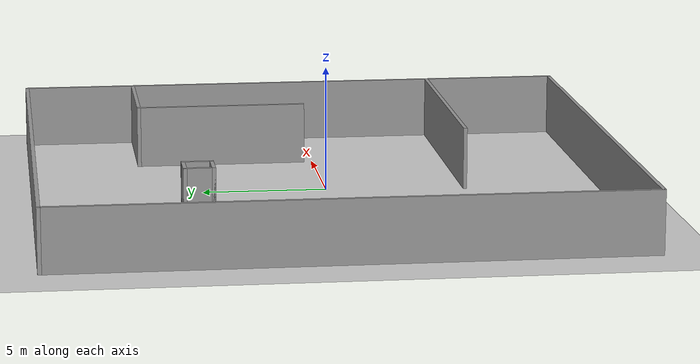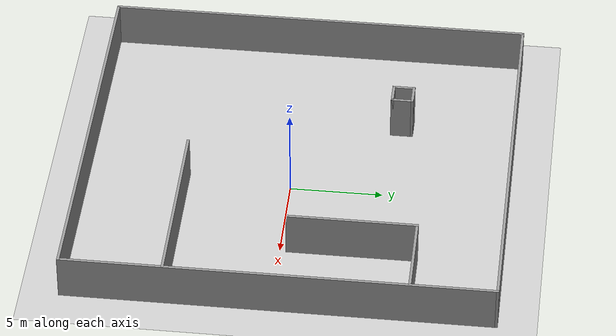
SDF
<?xml version="1.0" ?>
<sdf version='1.7'>
  <world name='default'>

    <include>
      <uri>model://ground_plane</uri>
    </include>
    <include>
      <uri>model://sun</uri>
    </include>

    <plugin name="ros_interface_plugin" filename="librotors_gazebo_ros_interface_plugin.so"/>

    <gravity>0 0 -9.8</gravity>
    <magnetic_field>6e-06 2.3e-05 -4.2e-05</magnetic_field>
    <atmosphere type='adiabatic'/>
    <physics type='ode'>
      <max_step_size>0.001</max_step_size>
      <real_time_factor>1</real_time_factor>
      <real_time_update_rate>1000</real_time_update_rate>
    </physics>
    <scene>
      <ambient>0.4 0.4 0.4 1</ambient>
      <background>0.7 0.7 0.7 1</background>
      <shadows>1</shadows>
    </scene>
    <wind/>
    <spherical_coordinates>
      <surface_model>EARTH_WGS84</surface_model>
      <latitude_deg>0</latitude_deg>
      <longitude_deg>0</longitude_deg>
      <elevation>0</elevation>
      <heading_deg>0</heading_deg>
    </spherical_coordinates>

    <model name='enclosed_small'>
      <pose>-1.03088 0.372247 0 0 -0 0</pose>
      <link name='Wall_1'>
        <collision name='Wall_1_Collision'>
          <geometry>
            <box>
              <size>23 0.15 2.5</size>
            </box>
          </geometry>
          <pose>0 0 1.25 0 -0 0</pose>
          <max_contacts>10</max_contacts>
          <surface>
            <contact>
              <ode/>
            </contact>
            <bounce/>
            <friction>
              <torsional>
                <ode/>
              </torsional>
              <ode/>
            </friction>
          </surface>
        </collision>
        <visual name='Wall_1_Visual'>
          <pose>0 0 1.25 0 -0 0</pose>
          <geometry>
            <box>
              <size>23 0.15 2.5</size>
            </box>
          </geometry>
          <material>
            <script>
              <uri>file://media/materials/scripts/gazebo.material</uri>
              <name>Gazebo/Grey</name>
            </script>
            <ambient>1 1 1 1</ambient>
          </material>
          <meta>
            <layer>0</layer>
          </meta>
        </visual>
        <pose>-10.675 0 0 0 -0 -1.5708</pose>
        <self_collide>0</self_collide>
        <enable_wind>0</enable_wind>
        <kinematic>0</kinematic>
      </link>
      <link name='Wall_10'>
        <collision name='Wall_10_Collision'>
          <geometry>
            <box>
              <size>7 0.15 2.5</size>
            </box>
          </geometry>
          <pose>0 0 1.25 0 -0 0</pose>
          <max_contacts>10</max_contacts>
          <surface>
            <contact>
              <ode/>
            </contact>
            <bounce/>
            <friction>
              <torsional>
                <ode/>
              </torsional>
              <ode/>
            </friction>
          </surface>
        </collision>
        <visual name='Wall_10_Visual'>
          <pose>0 0 1.25 0 -0 0</pose>
          <geometry>
            <box>
              <size>7 0.15 2.5</size>
            </box>
          </geometry>
          <material>
            <script>
              <uri>file://media/materials/scripts/gazebo.material</uri>
              <name>Gazebo/Grey</name>
            </script>
            <ambient>1 1 1 1</ambient>
          </material>
          <meta>
            <layer>0</layer>
          </meta>
        </visual>
        <pose>6.04205 3.4605 0 0 -0 -1.5708</pose>
        <self_collide>0</self_collide>
        <enable_wind>0</enable_wind>
        <kinematic>0</kinematic>
      </link>
      <link name='Wall_12'>
        <collision name='Wall_12_Collision'>
          <geometry>
            <box>
              <size>10.25 0.15 2.5</size>
            </box>
          </geometry>
          <pose>0 0 1.25 0 -0 0</pose>
          <max_contacts>10</max_contacts>
          <surface>
            <contact>
              <ode/>
            </contact>
            <bounce/>
            <friction>
              <torsional>
                <ode/>
              </torsional>
              <ode/>
            </friction>
          </surface>
        </collision>
        <visual name='Wall_12_Visual'>
          <pose>0 0 1.25 0 -0 0</pose>
          <geometry>
            <box>
              <size>10.25 0.15 2.5</size>
            </box>
          </geometry>
          <material>
            <script>
              <uri>file://media/materials/scripts/gazebo.material</uri>
              <name>Gazebo/Grey</name>
            </script>
            <ambient>1 1 1 1</ambient>
          </material>
          <meta>
            <layer>0</layer>
          </meta>
        </visual>
        <pose>5.59205 -5.96919 0 0 -0 3.14159</pose>
        <self_collide>0</self_collide>
        <enable_wind>0</enable_wind>
        <kinematic>0</kinematic>
      </link>
      <link name='Wall_14'>
        <collision name='Wall_14_Collision'>
          <geometry>
            <box>
              <size>1.25 0.15 2.5</size>
            </box>
          </geometry>
          <pose>0 0 1.25 0 -0 0</pose>
          <max_contacts>10</max_contacts>
          <surface>
            <contact>
              <ode/>
            </contact>
            <bounce/>
            <friction>
              <torsional>
                <ode/>
              </torsional>
              <ode/>
            </friction>
          </surface>
        </collision>
        <visual name='Wall_14_Visual'>
          <pose>0 0 1.25 0 -0 0</pose>
          <geometry>
            <box>
              <size>1.25 0.15 2.5</size>
            </box>
          </geometry>
          <material>
            <script>
              <uri>file://media/materials/scripts/gazebo.material</uri>
              <name>Gazebo/Grey</name>
            </script>
            <ambient>1 1 1 1</ambient>
          </material>
          <meta>
            <layer>0</layer>
          </meta>
        </visual>
        <pose>-5.22795 5.22461 0 0 -0 -1.5708</pose>
        <self_collide>0</self_collide>
        <enable_wind>0</enable_wind>
        <kinematic>0</kinematic>
      </link>
      <link name='Wall_15'>
        <collision name='Wall_15_Collision'>
          <geometry>
            <box>
              <size>1.25 0.15 2.5</size>
            </box>
          </geometry>
          <pose>0 0 1.25 0 -0 0</pose>
          <max_contacts>10</max_contacts>
          <surface>
            <contact>
              <ode/>
            </contact>
            <bounce/>
            <friction>
              <torsional>
                <ode/>
              </torsional>
              <ode/>
            </friction>
          </surface>
        </collision>
        <visual name='Wall_15_Visual'>
          <pose>0 0 1.25 0 -0 0</pose>
          <geometry>
            <box>
              <size>1.25 0.15 2.5</size>
            </box>
          </geometry>
          <material>
            <script>
              <uri>file://media/materials/scripts/gazebo.material</uri>
              <name>Gazebo/Grey</name>
            </script>
            <ambient>1 1 1 1</ambient>
          </material>
          <meta>
            <layer>0</layer>
          </meta>
        </visual>
        <pose>-4.67795 4.6746 0 0 -0 0</pose>
        <self_collide>0</self_collide>
        <enable_wind>0</enable_wind>
        <kinematic>0</kinematic>
      </link>
      <link name='Wall_16'>
        <collision name='Wall_16_Collision'>
          <geometry>
            <box>
              <size>1.25 0.15 2.5</size>
            </box>
          </geometry>
          <pose>0 0 1.25 0 -0 0</pose>
          <max_contacts>10</max_contacts>
          <surface>
            <contact>
              <ode/>
            </contact>
            <bounce/>
            <friction>
              <torsional>
                <ode/>
              </torsional>
              <ode/>
            </friction>
          </surface>
        </collision>
        <visual name='Wall_16_Visual'>
          <pose>0 0 1.25 0 -0 0</pose>
          <geometry>
            <box>
              <size>1.25 0.15 2.5</size>
            </box>
          </geometry>
          <material>
            <script>
              <uri>file://media/materials/scripts/gazebo.material</uri>
              <name>Gazebo/Grey</name>
            </script>
            <ambient>1 1 1 1</ambient>
          </material>
          <meta>
            <layer>0</layer>
          </meta>
        </visual>
        <pose>-4.12795 5.22461 0 0 -0 1.5708</pose>
        <self_collide>0</self_collide>
        <enable_wind>0</enable_wind>
        <kinematic>0</kinematic>
      </link>
      <link name='Wall_17'>
        <collision name='Wall_17_Collision'>
          <geometry>
            <box>
              <size>1.25 0.15 2.5</size>
            </box>
          </geometry>
          <pose>0 0 1.25 0 -0 0</pose>
          <max_contacts>10</max_contacts>
          <surface>
            <contact>
              <ode/>
            </contact>
            <bounce/>
            <friction>
              <torsional>
                <ode/>
              </torsional>
              <ode/>
            </friction>
          </surface>
        </collision>
        <visual name='Wall_17_Visual'>
          <pose>0 0 1.25 0 -0 0</pose>
          <geometry>
            <box>
              <size>1.25 0.15 2.5</size>
            </box>
          </geometry>
          <material>
            <script>
              <uri>file://media/materials/scripts/gazebo.material</uri>
              <name>Gazebo/Grey</name>
            </script>
            <ambient>1 1 1 1</ambient>
          </material>
          <meta>
            <layer>0</layer>
          </meta>
        </visual>
        <pose>-4.67795 5.77461 0 0 -0 3.14159</pose>
        <self_collide>0</self_collide>
        <enable_wind>0</enable_wind>
        <kinematic>0</kinematic>
      </link>
      <link name='Wall_2'>
        <collision name='Wall_2_Collision'>
          <geometry>
            <box>
              <size>21.5 0.15 2.5</size>
            </box>
          </geometry>
          <pose>0 0 1.25 0 -0 0</pose>
          <max_contacts>10</max_contacts>
          <surface>
            <contact>
              <ode/>
            </contact>
            <bounce/>
            <friction>
              <torsional>
                <ode/>
              </torsional>
              <ode/>
            </friction>
          </surface>
        </collision>
        <visual name='Wall_2_Visual'>
          <pose>0 0 1.25 0 -0 0</pose>
          <geometry>
            <box>
              <size>21.5 0.15 2.5</size>
            </box>
          </geometry>
          <material>
            <script>
              <uri>file://media/materials/scripts/gazebo.material</uri>
              <name>Gazebo/Grey</name>
            </script>
            <ambient>1 1 1 1</ambient>
          </material>
          <meta>
            <layer>0</layer>
          </meta>
        </visual>
        <pose>0 -11.425 0 0 -0 0</pose>
        <self_collide>0</self_collide>
        <enable_wind>0</enable_wind>
        <kinematic>0</kinematic>
      </link>
      <link name='Wall_3'>
        <collision name='Wall_3_Collision'>
          <geometry>
            <box>
              <size>23 0.15 2.5</size>
            </box>
          </geometry>
          <pose>0 0 1.25 0 -0 0</pose>
          <max_contacts>10</max_contacts>
          <surface>
            <contact>
              <ode/>
            </contact>
            <bounce/>
            <friction>
              <torsional>
                <ode/>
              </torsional>
              <ode/>
            </friction>
          </surface>
        </collision>
        <visual name='Wall_3_Visual'>
          <pose>0 0 1.25 0 -0 0</pose>
          <geometry>
            <box>
              <size>23 0.15 2.5</size>
            </box>
          </geometry>
          <material>
            <script>
              <uri>file://media/materials/scripts/gazebo.material</uri>
              <name>Gazebo/Grey</name>
            </script>
            <ambient>1 1 1 1</ambient>
          </material>
          <meta>
            <layer>0</layer>
          </meta>
        </visual>
        <pose>10.675 0 0 0 -0 1.5708</pose>
        <self_collide>0</self_collide>
        <enable_wind>0</enable_wind>
        <kinematic>0</kinematic>
      </link>
      <link name='Wall_4'>
        <collision name='Wall_4_Collision'>
          <geometry>
            <box>
              <size>21.5 0.15 2.5</size>
            </box>
          </geometry>
          <pose>0 0 1.25 0 -0 0</pose>
          <max_contacts>10</max_contacts>
          <surface>
            <contact>
              <ode/>
            </contact>
            <bounce/>
            <friction>
              <torsional>
                <ode/>
              </torsional>
              <ode/>
            </friction>
          </surface>
        </collision>
        <visual name='Wall_4_Visual'>
          <pose>0 0 1.25 0 -0 0</pose>
          <geometry>
            <box>
              <size>21.5 0.15 2.5</size>
            </box>
          </geometry>
          <material>
            <script>
              <uri>file://media/materials/scripts/gazebo.material</uri>
              <name>Gazebo/Grey</name>
            </script>
            <ambient>1 1 1 1</ambient>
          </material>
          <meta>
            <layer>0</layer>
          </meta>
        </visual>
        <pose>0 11.425 0 0 -0 3.14159</pose>
        <self_collide>0</self_collide>
        <enable_wind>0</enable_wind>
        <kinematic>0</kinematic>
      </link>
      <link name='Wall_9'>
        <collision name='Wall_9_Collision'>
          <geometry>
            <box>
              <size>4.75 0.15 2.5</size>
            </box>
          </geometry>
          <pose>0 0 1.25 0 -0 0</pose>
          <max_contacts>10</max_contacts>
          <surface>
            <contact>
              <ode/>
            </contact>
            <bounce/>
            <friction>
              <torsional>
                <ode/>
              </torsional>
              <ode/>
            </friction>
          </surface>
        </collision>
        <visual name='Wall_9_Visual'>
          <pose>0 0 1.25 0 -0 0</pose>
          <geometry>
            <box>
              <size>4.75 0.15 2.5</size>
            </box>
          </geometry>
          <material>
            <script>
              <uri>file://media/materials/scripts/gazebo.material</uri>
              <name>Gazebo/Grey</name>
            </script>
            <ambient>1 1 1 1</ambient>
          </material>
          <meta>
            <layer>0</layer>
          </meta>
        </visual>
        <pose>8.34205 6.88551 0 0 -0 3.14159</pose>
        <self_collide>0</self_collide>
        <enable_wind>0</enable_wind>
        <kinematic>0</kinematic>
      </link>
      <static>1</static>
    </model>

  </world>
</sdf>
